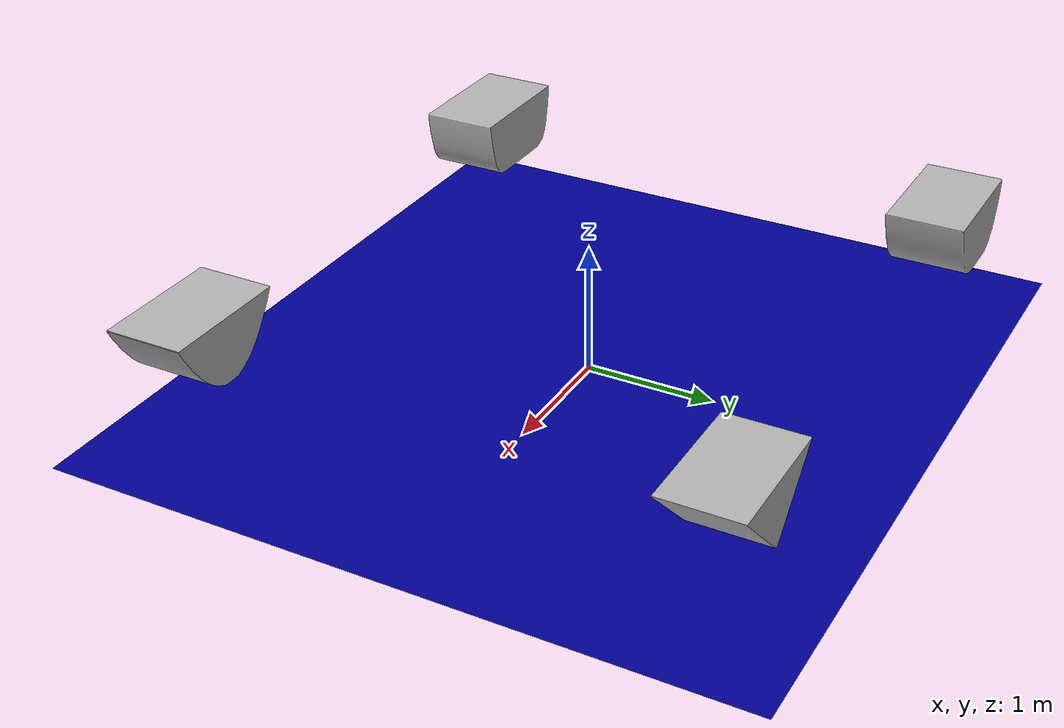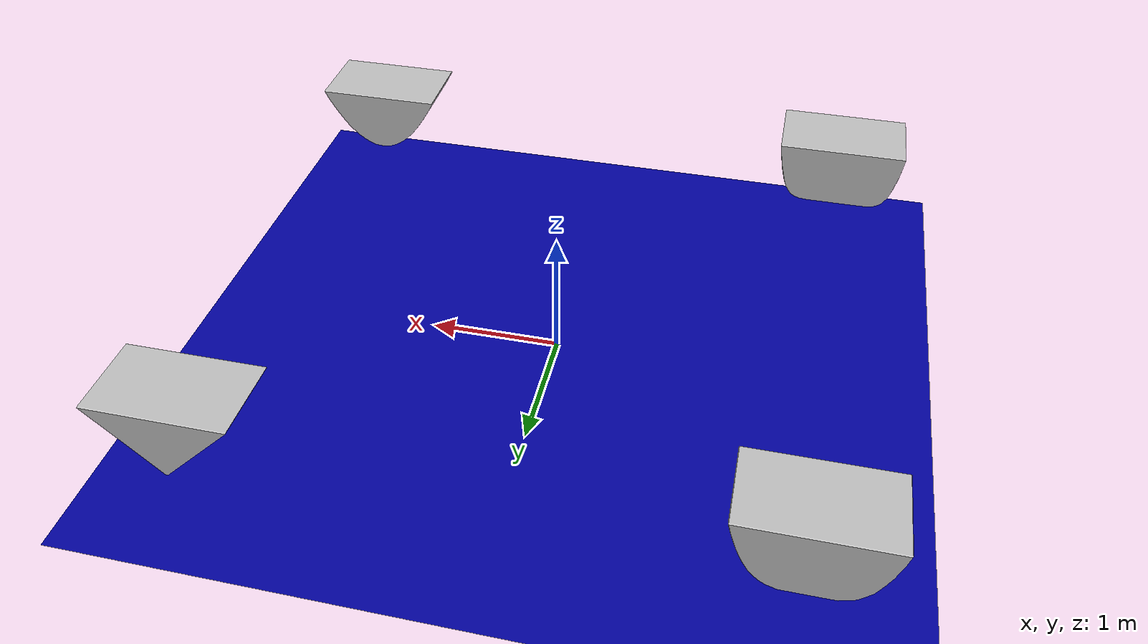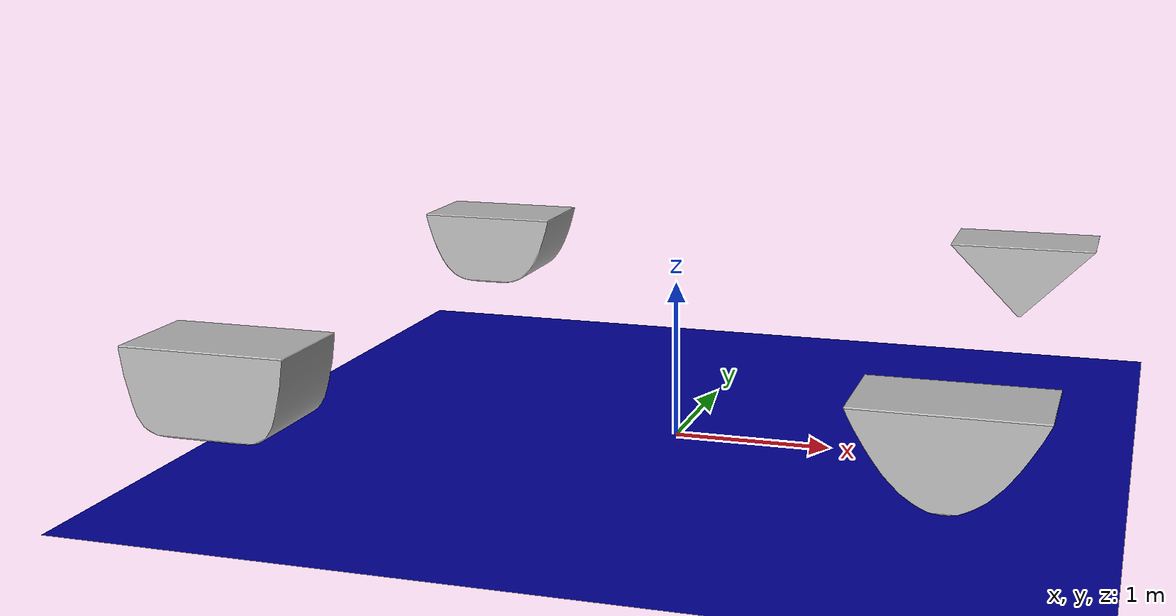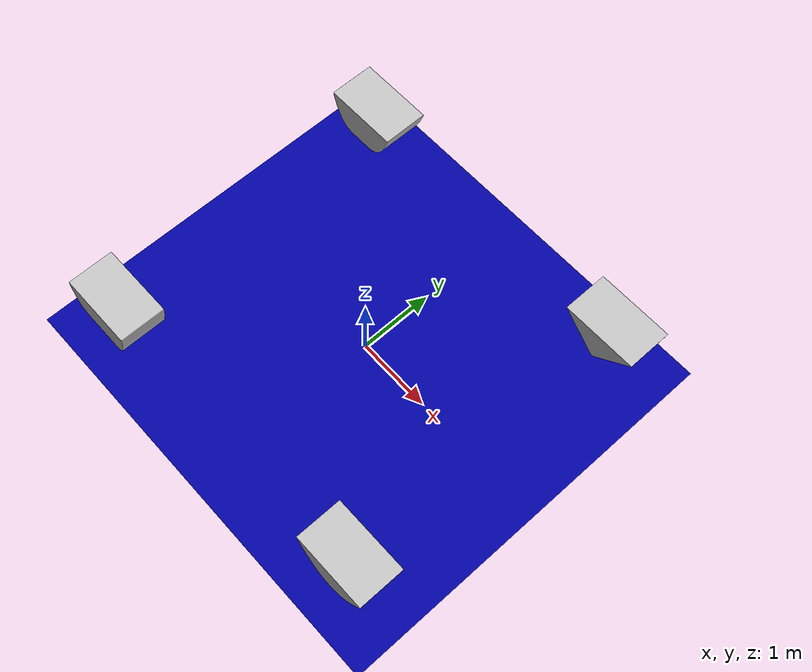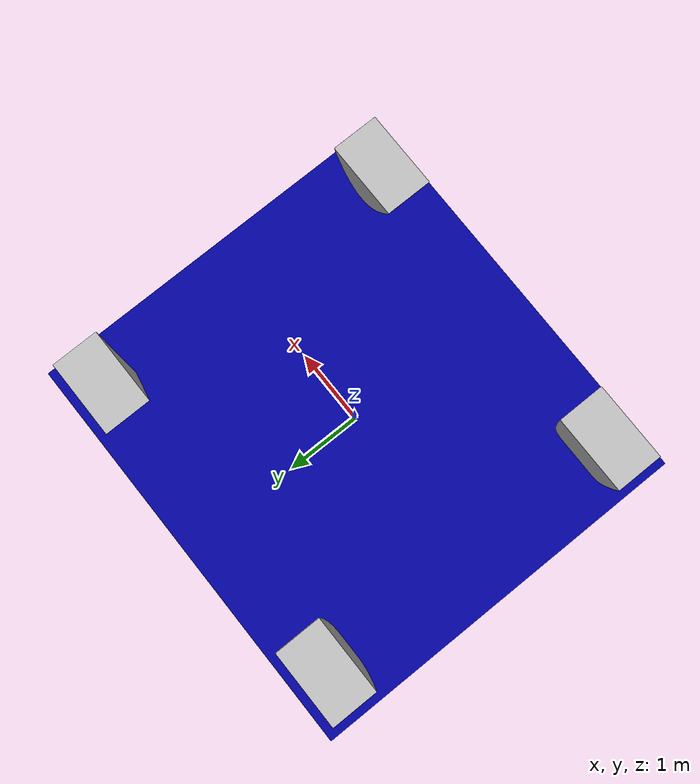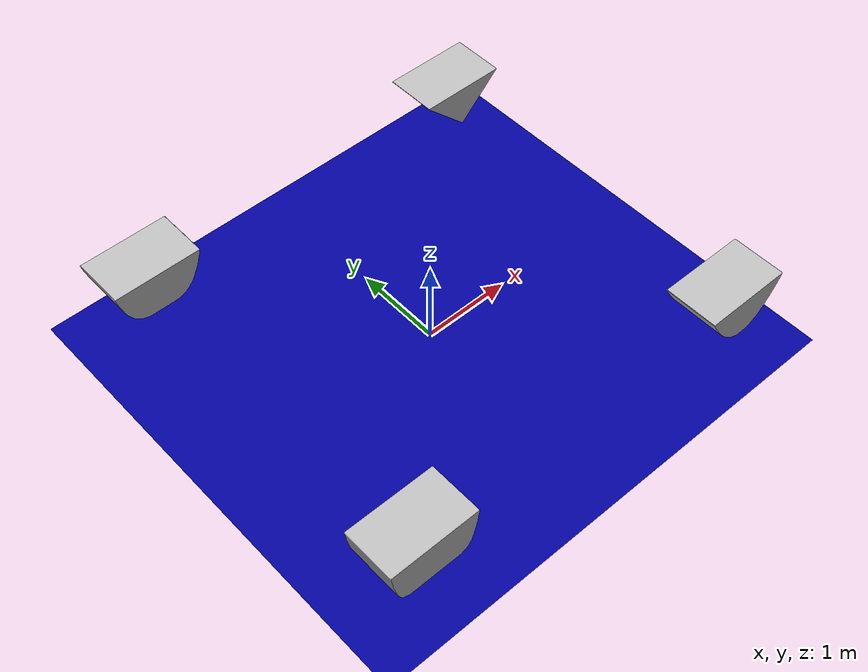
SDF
<?xml version="1.0" encoding="utf-8"?>
<!-- |    This document was autogenerated by xacro from buoyancy_plugin_demo.world.xacro | -->
<!-- |    EDITING THIS FILE BY HAND IS NOT RECOMMENDED                                 | -->
<!-- World containing buoyancy test models -->
<sdf version="1.6">
  <world name="buoyancy_test">
    <scene>
      <grid>false</grid>
      <origin_visual>false</origin_visual>
      <ambient>0.6 0.6 0.6 1</ambient>
      <background>0.8 0.8 0.8 1</background>
    </scene>
    <!-- A global light source -->
    <include>
      <uri>model://sun</uri>
    </include>
    <gui fullscreen="0">
      <camera name="user_camera">
        <pose frame="">4.84693 -4.51466 1.77033 0 0.275643 2.35619</pose>
        <view_controller>orbit</view_controller>
      </camera>
    </gui>
    <!-- water level for visual reference at z = 0-->
    <model name="plane">
      <static>true</static>
      <pose>0.8 0.8 0 0 0 0</pose>
      <link name="link">
        <visual name="visual">
          <geometry>
            <plane>
              <normal>0 0 1</normal>
              <size>20 20</size>
            </plane>
          </geometry>
          <material>
            <ambient>0.0 0.0 0.6 1</ambient>
          </material>
        </visual>
      </link>
    </model>
    <model name="shape_1_boat">
	    <!-- AVS is about 92 degrees (as calculated by John's code) -->
      <pose>2 2 0.5 0 0 0</pose>
      <static>False</static>
      <link name="link">
        <visual name="visual">
          <geometry>
            <mesh>
		    <uri>model://bod/meshes/shape_1_boat_convex.stl</uri>
            </mesh>
          </geometry>
        </visual>
        <collision name="collision">
          <geometry>
            <mesh>
		    <uri>model://bod/meshes/shape_1_boat_convex.stl</uri>
            </mesh>
          </geometry>
        </collision>
        <inertial>
		<mass>37.47525</mass>
		<pose>0 0 0.333414 0 0 0</pose>
          <inertia>
            <ixx>1.64275</ixx>
            <ixy>0</ixy>
            <ixz>0</ixz>
            <iyy>2.08</iyy>
            <iyz>0</iyz>
            <izz>2.68475</izz>
          </inertia>
        </inertial>
      </link>
      <plugin filename="libbuoyancy_gazebo_plugin.so" name="BuoyancyPlugin">
        <fluid_density>1000</fluid_density>
        <fluid_level>0.0</fluid_level>
        <linear_drag>5</linear_drag>
        <angular_drag>2</angular_drag>
        <buoyancy name="buoyancy">
          <link_name>link</link_name>
          <geometry>
            <mesh>
		    <uri>model://bod/meshes/shape_1_boat_convex.stl</uri>
            </mesh>
          </geometry>
        </buoyancy>
      </plugin>
    </model>
    <model name="shape_2_boat">
	    <!-- AVS is about 92 degrees (as calculated by John's code) -->
      <pose>2 -2 0.5 0 0 0</pose>
      <static>False</static>
      <link name="link">
        <visual name="visual">
          <geometry>
            <mesh>
		    <uri>model://bod/meshes/shape_2_boat_convex.stl</uri>
            </mesh>
          </geometry>
        </visual>
        <collision name="collision">
          <geometry>
            <mesh>
		    <uri>model://bod/meshes/shape_2_boat_convex.stl</uri>
            </mesh>
          </geometry>
        </collision>
        <inertial>
		<mass>49.9715</mass>
		<pose>0 0 0.300021 0 0 0</pose>
          <inertia>
            <ixx>2.354</ixx>
            <ixy>0</ixy>
            <ixz>0</ixz>
            <iyy>3.35325</iyy>
            <iyz>0</iyz>
            <izz>3.995755</izz>
          </inertia>
        </inertial>
      </link>
      <plugin filename="libbuoyancy_gazebo_plugin.so" name="BuoyancyPlugin">
        <fluid_density>1000</fluid_density>
        <fluid_level>0.0</fluid_level>
        <linear_drag>5</linear_drag>
        <angular_drag>2</angular_drag>
        <buoyancy name="buoyancy">
          <link_name>link</link_name>
          <geometry>
            <mesh>
		    <uri>model://bod/meshes/shape_2_boat_convex.stl</uri>
            </mesh>
          </geometry>
        </buoyancy>
      </plugin>
    </model>
    <model name="shape_4_boat">
      <pose>-2 2 0.5 0 0 0</pose>
      <static>False</static>
      <link name="link">
        <visual name="visual">
          <geometry>
            <mesh>
		    <uri>model://bod/meshes/shape_4_boat_convex.stl</uri>
            </mesh>
          </geometry>
        </visual>
        <collision name="collision">
          <geometry>
            <mesh>
		    <uri>model://bod/meshes/shape_4_boat_convex.stl</uri>
            </mesh>
          </geometry>
        </collision>
        <inertial>
		<mass>59.961</mass>
		<pose>0 0 0.277813 0 0 0</pose>
          <inertia>
            <ixx>2.93525</ixx>
            <ixy>0</ixy>
            <ixz>0</ixz>
            <iyy>4.705</iyy>
            <iyz>0</iyz>
            <izz>5.3645</izz>
          </inertia>
        </inertial>
      </link>
      <plugin filename="libbuoyancy_gazebo_plugin.so" name="BuoyancyPlugin">
        <fluid_density>1000</fluid_density>
        <fluid_level>0.0</fluid_level>
        <linear_drag>5</linear_drag>
        <angular_drag>2</angular_drag>
        <buoyancy name="buoyancy">
          <link_name>link</link_name>
          <geometry>
            <mesh>
		    <uri>model://bod/meshes/shape_4_boat_convex.stl</uri>
            </mesh>
          </geometry>
        </buoyancy>
      </plugin>
    </model>
    <model name="shape_8_boat">
      <pose>-2 -2 0.5 0 0 0</pose>
      <static>False</static>
      <link name="link">
        <visual name="visual">
          <geometry>
            <mesh>
		    <uri>model://bod/meshes/shape_8_boat_convex.stl</uri>
            </mesh>
          </geometry>
        </visual>
        <collision name="collision">
          <geometry>
            <mesh>
		    <uri>model://bod/meshes/shape_8_boat_convex.stl</uri>
            </mesh>
          </geometry>
        </collision>
        <inertial>
		<mass>66.624</mass>
		<pose>0 0 0.264759 0 0 0</pose>
          <inertia>
            <ixx>3.324</ixx>
            <ixy>0</ixy>
            <ixz>0</ixz>
            <iyy>5.867</iyy>
            <iyz>0</iyz>
            <izz>6.53775</izz>
          </inertia>
        </inertial>
      </link>
      <plugin filename="libbuoyancy_gazebo_plugin.so" name="BuoyancyPlugin">
        <fluid_density>1000</fluid_density>
        <fluid_level>0.0</fluid_level>
        <linear_drag>5</linear_drag>
        <angular_drag>2.0</angular_drag>
        <buoyancy name="buoyancy">
          <link_name>link</link_name>
          <geometry>
            <mesh>
		    <uri>model://bod/meshes/shape_8_boat_convex.stl</uri>
            </mesh>
          </geometry>
        </buoyancy>
      </plugin>
    </model>
</world>
</sdf>
